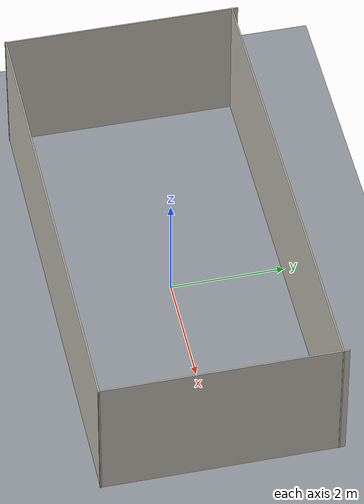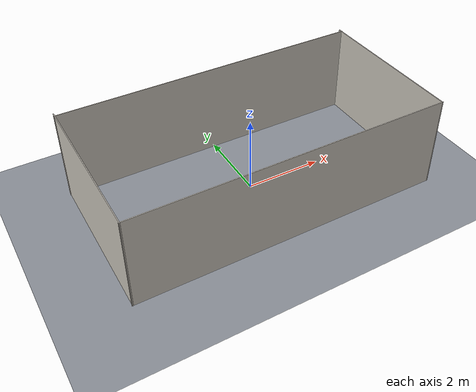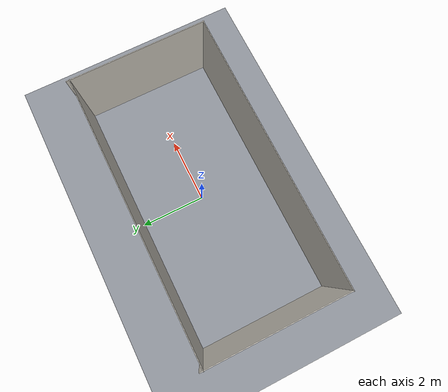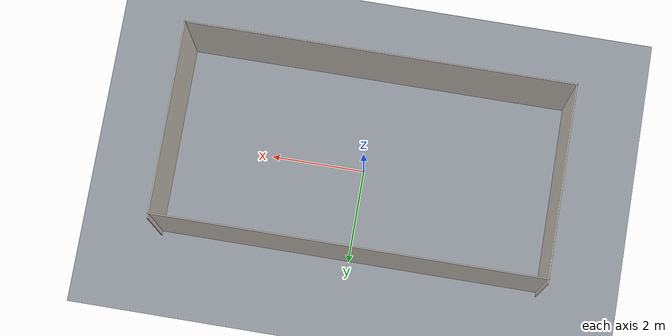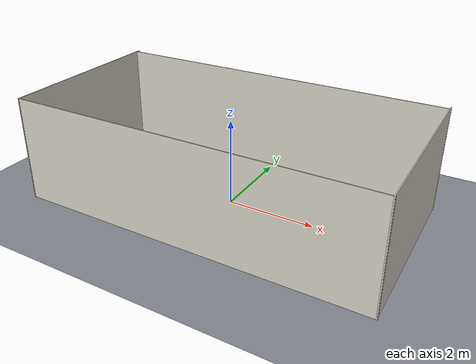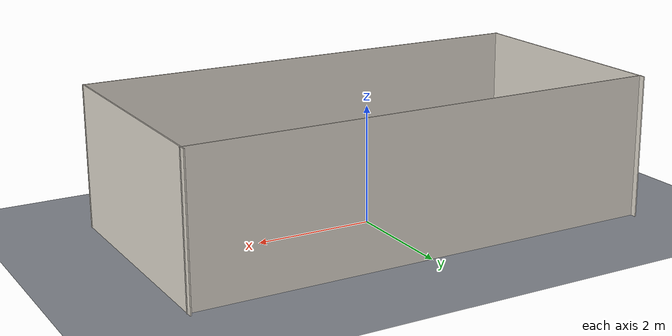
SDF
<?xml version="1.0" ?>
<sdf version="1.7">
  <world name="crowd_nav_open_arena">
    <physics name="10ms" type="ignored">
      <max_step_size>0.01</max_step_size>
      <real_time_factor>1.0</real_time_factor>
    </physics>
    <plugin filename="libignition-gazebo-physics-system.so" name="ignition::gazebo::systems::Physics"/>
    <plugin filename="libignition-gazebo-user-commands-system.so" name="ignition::gazebo::systems::UserCommands"/>
    <plugin filename="libignition-gazebo-scene-broadcaster-system.so" name="ignition::gazebo::systems::SceneBroadcaster"/>
    <plugin filename="ignition-gazebo-sensors-system" name="ignition::gazebo::systems::Sensors">
      <render_engine>ogre2</render_engine>
    </plugin>

    <scene>
      <ambient>0.40 0.40 0.42 1</ambient>
      <background>0.55 0.60 0.65 1</background>
      <shadows>true</shadows>
      <grid>false</grid>
    </scene>

    <light type="directional" name="sun">
      <cast_shadows>true</cast_shadows>
      <pose>0 0 10 0 0 0</pose>
      <diffuse>0.85 0.82 0.78 1</diffuse>
      <specular>0.2 0.2 0.2 1</specular>
      <attenuation><range>1000</range><constant>0.9</constant><linear>0.01</linear><quadratic>0.001</quadratic></attenuation>
      <direction>-0.5 0.1 -0.9</direction>
    </light>

    <light type="point" name="ceiling_light_1">
      <pose>-2.5 0 2.3 0 0 0</pose>
      <diffuse>1.0 0.95 0.85 1</diffuse>
      <specular>0.3 0.3 0.3 1</specular>
      <attenuation><range>8</range><constant>0.3</constant><linear>0.2</linear><quadratic>0.05</quadratic></attenuation>
      <cast_shadows>false</cast_shadows>
    </light>
    <light type="point" name="ceiling_light_2">
      <pose>0.5 0 2.3 0 0 0</pose>
      <diffuse>1.0 0.95 0.85 1</diffuse>
      <specular>0.3 0.3 0.3 1</specular>
      <attenuation><range>8</range><constant>0.3</constant><linear>0.2</linear><quadratic>0.05</quadratic></attenuation>
      <cast_shadows>false</cast_shadows>
    </light>
    <light type="point" name="ceiling_light_3">
      <pose>3.2 0 2.3 0 0 0</pose>
      <diffuse>1.0 0.95 0.85 1</diffuse>
      <specular>0.3 0.3 0.3 1</specular>
      <attenuation><range>8</range><constant>0.3</constant><linear>0.2</linear><quadratic>0.05</quadratic></attenuation>
      <cast_shadows>false</cast_shadows>
    </light>

    <model name="ground_plane">
      <static>true</static>
      <link name="link">
        <collision name="collision">
          <geometry><plane><normal>0 0 1</normal><size>20 20</size></plane></geometry>
          <surface><friction><ode/></friction></surface>
        </collision>
        <visual name="visual">
          <geometry><plane><normal>0 0 1</normal><size>20 20</size></plane></geometry>
          <material><ambient>0.55 0.57 0.60 1</ambient><diffuse>0.55 0.57 0.60 1</diffuse><specular>0.25 0.25 0.28 1</specular></material>
        </visual>
      </link>
    </model>

    <model name="open_arena">
      <static>true</static>
      <link name="link">
        <collision name="wall_south_collision">
          <pose>0.00000 -2.05548 1.21500 0 0 0</pose>
          <geometry><box><size>8.14509 0.02160 2.43000</size></box></geometry>
        </collision>
        <visual name="wall_south_visual">
          <pose>0.00000 -2.05548 1.21500 0 0 0</pose>
          <geometry><box><size>8.14509 0.02160 2.43000</size></box></geometry>
          <material><ambient>0.80 0.78 0.74 1</ambient><diffuse>0.80 0.78 0.74 1</diffuse><specular>0.15 0.15 0.15 1</specular></material>
        </visual>
        <collision name="wall_north_collision">
          <pose>0.00000 1.96762 1.21500 0 0 0</pose>
          <geometry><box><size>8.14509 0.02160 2.43000</size></box></geometry>
        </collision>
        <visual name="wall_north_visual">
          <pose>0.00000 1.96762 1.21500 0 0 0</pose>
          <geometry><box><size>8.14509 0.02160 2.43000</size></box></geometry>
          <material><ambient>0.80 0.78 0.74 1</ambient><diffuse>0.80 0.78 0.74 1</diffuse><specular>0.15 0.15 0.15 1</specular></material>
        </visual>
        <collision name="wall_west_collision">
          <pose>-4.05000 0.00000 1.21500 0 0 0</pose>
          <geometry><box><size>0.02160 4.14720 2.43000</size></box></geometry>
        </collision>
        <visual name="wall_west_visual">
          <pose>-4.05000 0.00000 1.21500 0 0 0</pose>
          <geometry><box><size>0.02160 4.14720 2.43000</size></box></geometry>
          <material><ambient>0.80 0.78 0.74 1</ambient><diffuse>0.80 0.78 0.74 1</diffuse><specular>0.15 0.15 0.15 1</specular></material>
        </visual>
        <collision name="wall_east_collision">
          <pose>4.05000 0.00000 1.21500 0 0 0</pose>
          <geometry><box><size>0.02160 4.14720 2.43000</size></box></geometry>
        </collision>
        <visual name="wall_east_visual">
          <pose>4.05000 0.00000 1.21500 0 0 0</pose>
          <geometry><box><size>0.02160 4.14720 2.43000</size></box></geometry>
          <material><ambient>0.80 0.78 0.74 1</ambient><diffuse>0.80 0.78 0.74 1</diffuse><specular>0.15 0.15 0.15 1</specular></material>
        </visual>
      </link>
    </model>
  </world>
</sdf>
